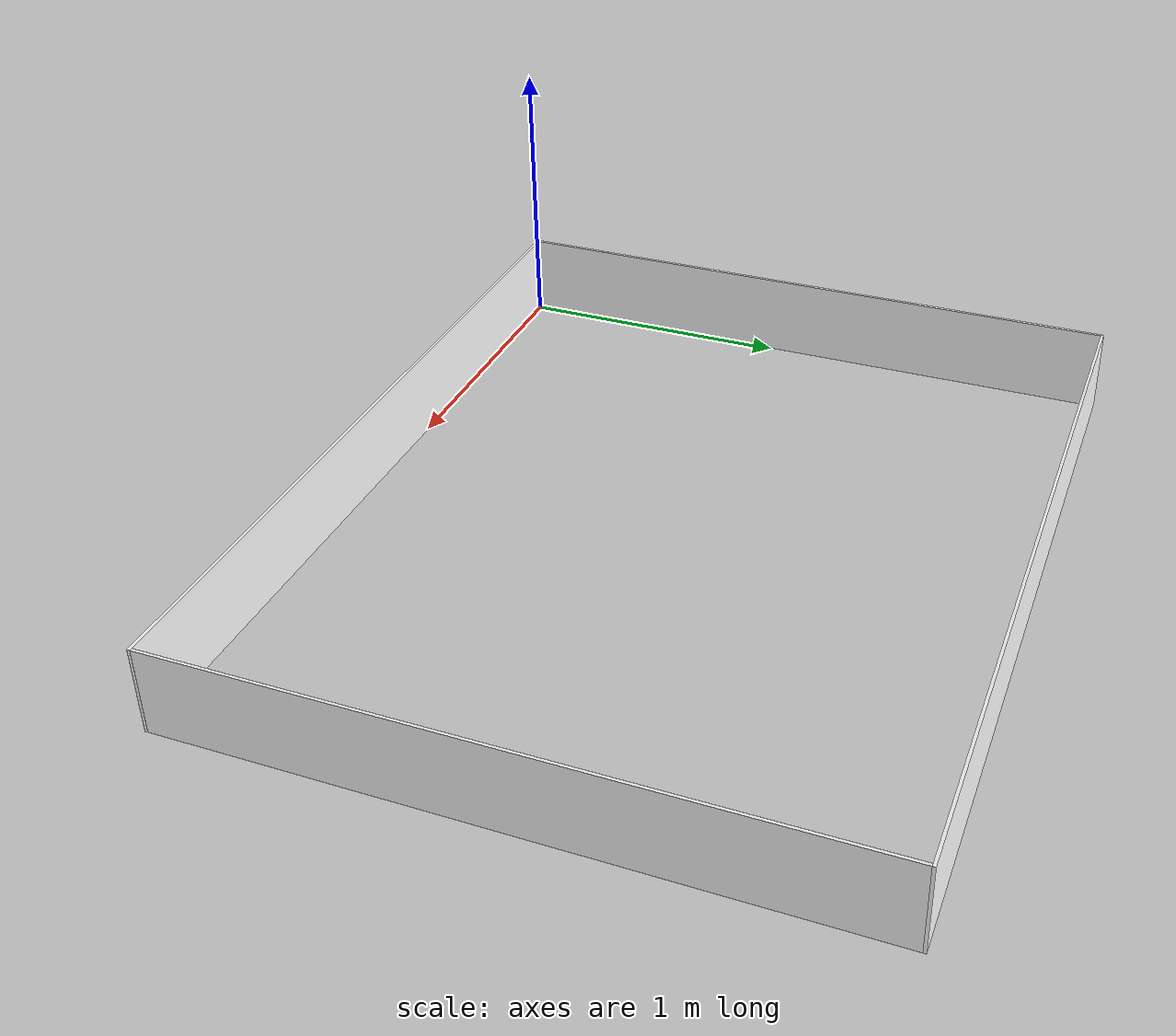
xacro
<?xml version="1.0"?>
<robot xmlns:xacro="http://www.ros.org/wiki/xacro" name="open_arena">

    <material name="blue">
        <color rgba="0 0 0.8 1"/>
    </material>
    <material name="black">
        <color rgba="0 0 0 1"/>
    </material>
    <material name="white">
        <color rgba="1 1 1 1"/>
    </material>
    <material name="red">
        <color rgba="1.0 0.0 0.0 1.0"/>
    </material>
    <material name="green">
        <color rgba="0.0 0.82 0.0 1"/>
    </material>
    <material name="grey">
        <color rgba="0.8 0.8 0.8 1"/>
    </material>
    <material name="pink">
        <color rgba="1.0 0.6 0.7 1"/>
    </material>
    <material name="orange">
        <color rgba="0.8 0.4 0.0 1"/>
    </material>
    <material name="yellow">
        <color rgba="0.9 0.9 0.0 1"/>
    </material>
    <material name="nocolor">
        <color rgba="0.0 0.0 0.0 0"/>
    </material>

 <xacro:macro name="fixed" params="prefix  mesh material gazebo_material">
        <link name="${prefix}_link">
            <inertial>
                <mass value="100"/>
                <inertia ixx="0.01" ixy="0.0" ixz="0.0" iyy="0.01" iyz="0.0"  izz="0.01"/>
                <origin xyz="0.0 0.0 0.0" rpy="0.0 0.0 0.0" />
            </inertial>
            <visual>
                <origin xyz="0.0 0.0 0.0" rpy="0.0 0.0 0.0"/>
                <geometry>
                    <mesh filename="package://robot_description/meshes/arena/${mesh}" scale="0.001 0.001 0.001"/>
                </geometry>
                <material name="${material}"/>
            </visual>
            <collision>
                <origin xyz="0.0 0.0 0.0" rpy="0.0 0.0 0.0" />
                <geometry>
                    <mesh filename="package://robot_description/meshes/arena/${mesh}" scale="0.001 0.001 0.001"/>
                </geometry>
            </collision>
        </link>
        <joint name="${prefix}_joint" type="fixed">
            <parent link="base_footprint"/>
            <child link="${prefix}_link"/>
            <origin xyz="0.0 0.0 0.0" rpy="0.0 0.0 0.0" />
        </joint>
        <gazebo reference="${prefix}_link">
            <material>${gazebo_material}</material>
        </gazebo>
    </xacro:macro>

    <link name="base_footprint"/>

    <xacro:fixed prefix= "arena_wall_yellow"
    mesh= "arena_wall_yellow.stl"
    material="white"
    gazebo_material="Gazebo/White"/>

    <xacro:fixed prefix= "arena_wall_blue"
    mesh= "arena_wall_blue.stl"
    material="white"
    gazebo_material="Gazebo/White"/>

    <xacro:fixed prefix= "arena_wall_pink"
    mesh= "arena_wall_pink.stl"
    material="white"
    gazebo_material="Gazebo/White"/>

    <xacro:fixed prefix= "arena_wall_white"
    mesh= "arena_wall_white.stl"
    material="white"
    gazebo_material="Gazebo/White"/>

    <!--########################## OBSTACLES #############################-->

    <!--######################## ALLEYS #############################-->

</robot>
